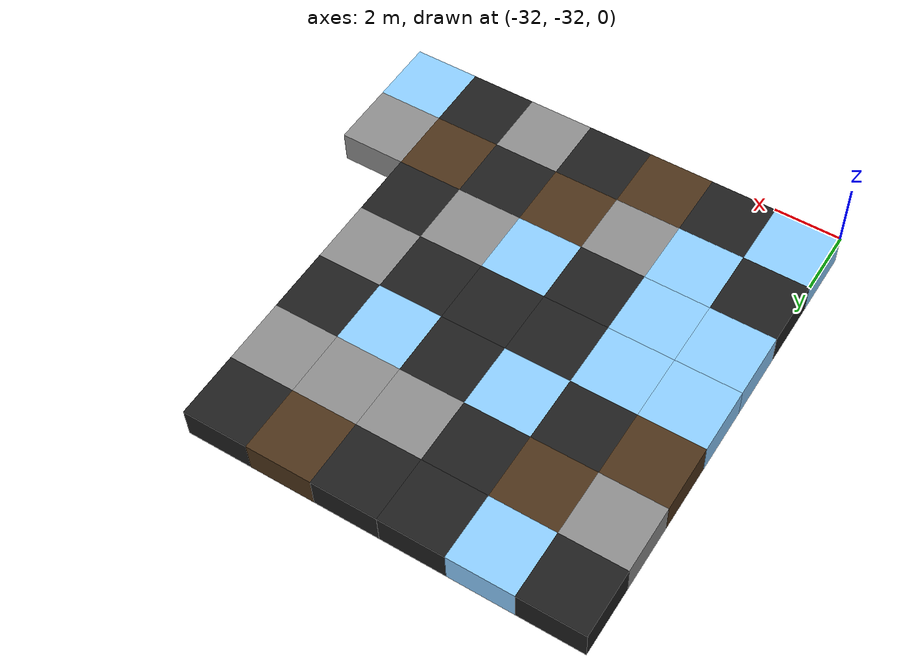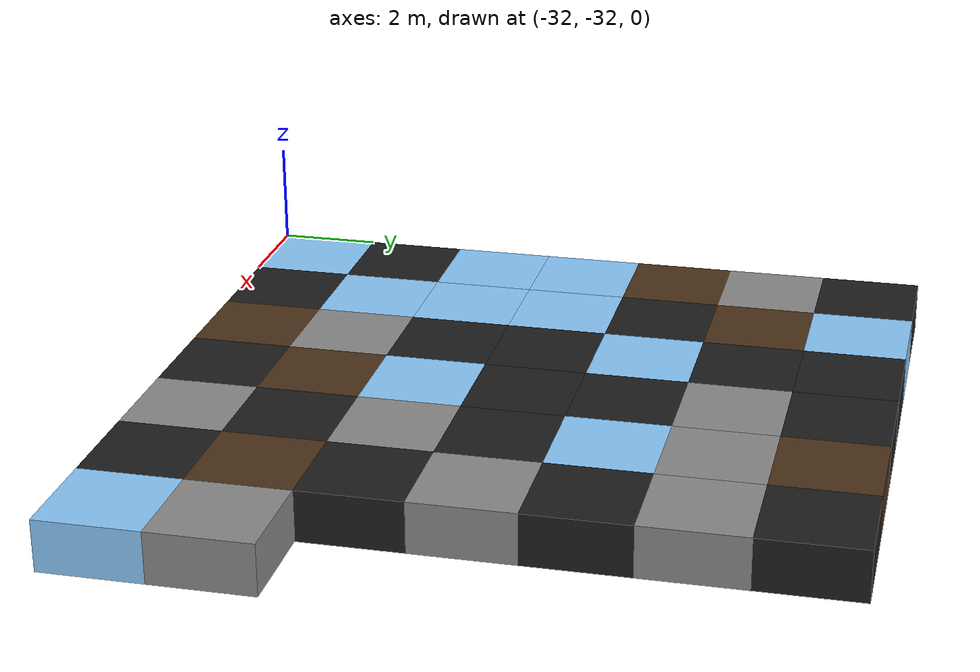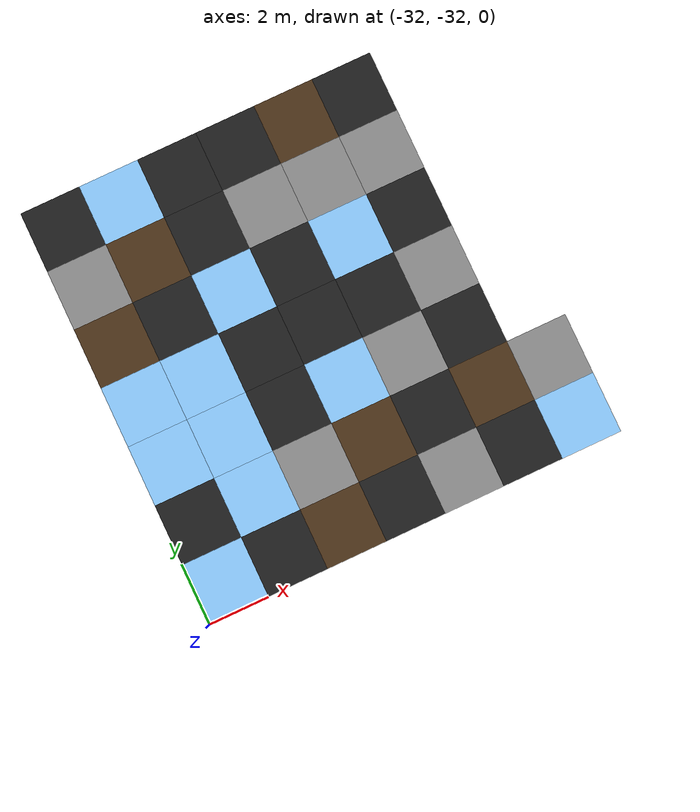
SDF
<sdf version="1.5">
 <world name="squares_example">
  <model name="tile_0_0">
   <static>true</static>
   <pose>-31.000 -31.000 -0.500 0 0 0</pose>
   <link name="link">
    <collision name="col">
     <geometry><box><size>2.0 2.0 1.0</size></box></geometry>
     <surface>
      <friction>
       <ode><mu>0.03</mu><mu2>0.02</mu2><fdir1>1 0 0</fdir1><slip1>0.03</slip1><slip2>0.03</slip2></ode>
       <torsional>
        <coefficient>0.005</coefficient>
        <use_patch_radius>false</use_patch_radius>
        <surface_radius>0.12</surface_radius>
        <ode><slip>0.01</slip></ode>
       </torsional>
      </friction>
      <bounce><restitution_coefficient>0.0</restitution_coefficient><threshold>0.1</threshold></bounce>
      <contact>
       <ode><kp>10000000.0</kp><kd>1000.0</kd><max_vel>0.01</max_vel><min_depth>0.0</min_depth></ode>
      </contact>
     </surface>
    </collision>
    <visual name="visual">
     <geometry><box><size>2.0 2.0 1.0</size></box></geometry>
     <material>
      <diffuse>0.55 0.80 1.00 1</diffuse>
      <ambient>0 0 0 0</ambient>
      <specular>0 0 0 1</specular>
      <emissive>0 0 0 1</emissive>
     </material>
    </visual>
   </link>
  </model>
  <model name="tile_1_0">
   <static>true</static>
   <pose>-29.000 -31.000 -0.500 0 0 0</pose>
   <link name="link">
    <collision name="col">
     <geometry><box><size>2.0 2.0 1.0</size></box></geometry>
     <surface>
      <friction>
       <ode><mu>0.4</mu><mu2>0.15</mu2><fdir1>1 0 0</fdir1><slip1>0.0</slip1><slip2>0.0</slip2></ode>
       <torsional>
        <coefficient>0.03</coefficient>
        <use_patch_radius>false</use_patch_radius>
        <surface_radius>0.12</surface_radius>
        <ode><slip>0.0</slip></ode>
       </torsional>
      </friction>
      <bounce><restitution_coefficient>0.0</restitution_coefficient><threshold>0.1</threshold></bounce>
      <contact>
       <ode><kp>1000000000.0</kp><kd>1000000.0</kd><max_vel>0.01</max_vel><min_depth>0.0</min_depth></ode>
      </contact>
     </surface>
    </collision>
    <visual name="visual">
     <geometry><box><size>2.0 2.0 1.0</size></box></geometry>
     <material>
      <diffuse>0.12 0.12 0.12 1</diffuse>
      <ambient>0 0 0 0</ambient>
      <specular>0 0 0 1</specular>
      <emissive>0 0 0 1</emissive>
     </material>
    </visual>
   </link>
  </model>
  <model name="tile_2_0">
   <static>true</static>
   <pose>-27.000 -31.000 -0.500 0 0 0</pose>
   <link name="link">
    <collision name="col">
     <geometry><box><size>2.0 2.0 1.0</size></box></geometry>
     <surface>
      <friction>
       <ode><mu>0.6</mu><mu2>0.4</mu2><fdir1>1 0 0</fdir1><slip1>0.08</slip1><slip2>0.08</slip2></ode>
       <torsional>
        <coefficient>0.03</coefficient>
        <use_patch_radius>false</use_patch_radius>
        <surface_radius>0.12</surface_radius>
        <ode><slip>0.0</slip></ode>
       </torsional>
      </friction>
      <bounce><restitution_coefficient>0.0</restitution_coefficient><threshold>0.1</threshold></bounce>
      <contact>
       <ode><kp>1000000.0</kp><kd>10000.0</kd><max_vel>0.01</max_vel><min_depth>0.0</min_depth></ode>
      </contact>
     </surface>
    </collision>
    <visual name="visual">
     <geometry><box><size>2.0 2.0 1.0</size></box></geometry>
     <material>
      <diffuse>0.30 0.20 0.10 1</diffuse>
      <ambient>0 0 0 0</ambient>
      <specular>0 0 0 1</specular>
      <emissive>0 0 0 1</emissive>
     </material>
    </visual>
   </link>
  </model>
  <model name="tile_3_0">
   <static>true</static>
   <pose>-25.000 -31.000 -0.500 0 0 0</pose>
   <link name="link">
    <collision name="col">
     <geometry><box><size>2.0 2.0 1.0</size></box></geometry>
     <surface>
      <friction>
       <ode><mu>0.4</mu><mu2>0.15</mu2><fdir1>1 0 0</fdir1><slip1>0.0</slip1><slip2>0.0</slip2></ode>
       <torsional>
        <coefficient>0.03</coefficient>
        <use_patch_radius>false</use_patch_radius>
        <surface_radius>0.12</surface_radius>
        <ode><slip>0.0</slip></ode>
       </torsional>
      </friction>
      <bounce><restitution_coefficient>0.0</restitution_coefficient><threshold>0.1</threshold></bounce>
      <contact>
       <ode><kp>1000000000.0</kp><kd>1000000.0</kd><max_vel>0.01</max_vel><min_depth>0.0</min_depth></ode>
      </contact>
     </surface>
    </collision>
    <visual name="visual">
     <geometry><box><size>2.0 2.0 1.0</size></box></geometry>
     <material>
      <diffuse>0.12 0.12 0.12 1</diffuse>
      <ambient>0 0 0 0</ambient>
      <specular>0 0 0 1</specular>
      <emissive>0 0 0 1</emissive>
     </material>
    </visual>
   </link>
  </model>
  <model name="tile_4_0">
   <static>true</static>
   <pose>-23.000 -31.000 -0.500 0 0 0</pose>
   <link name="link">
    <collision name="col">
     <geometry><box><size>2.0 2.0 1.0</size></box></geometry>
     <surface>
      <friction>
       <ode><mu>0.8</mu><mu2>0.3</mu2><fdir1>1 0 0</fdir1><slip1>0.0</slip1><slip2>0.0</slip2></ode>
       <torsional>
        <coefficient>0.03</coefficient>
        <use_patch_radius>false</use_patch_radius>
        <surface_radius>0.12</surface_radius>
        <ode><slip>0.0</slip></ode>
       </torsional>
      </friction>
      <bounce><restitution_coefficient>0.0</restitution_coefficient><threshold>0.1</threshold></bounce>
      <contact>
       <ode><kp>10000000000.0</kp><kd>10000000.0</kd><max_vel>0.01</max_vel><min_depth>0.0</min_depth></ode>
      </contact>
     </surface>
    </collision>
    <visual name="visual">
     <geometry><box><size>2.0 2.0 1.0</size></box></geometry>
     <material>
      <diffuse>0.55 0.55 0.55 1</diffuse>
      <ambient>0 0 0 0</ambient>
      <specular>0 0 0 1</specular>
      <emissive>0 0 0 1</emissive>
     </material>
    </visual>
   </link>
  </model>
  <model name="tile_5_0">
   <static>true</static>
   <pose>-21.000 -31.000 -0.500 0 0 0</pose>
   <link name="link">
    <collision name="col">
     <geometry><box><size>2.0 2.0 1.0</size></box></geometry>
     <surface>
      <friction>
       <ode><mu>0.4</mu><mu2>0.15</mu2><fdir1>1 0 0</fdir1><slip1>0.0</slip1><slip2>0.0</slip2></ode>
       <torsional>
        <coefficient>0.03</coefficient>
        <use_patch_radius>false</use_patch_radius>
        <surface_radius>0.12</surface_radius>
        <ode><slip>0.0</slip></ode>
       </torsional>
      </friction>
      <bounce><restitution_coefficient>0.0</restitution_coefficient><threshold>0.1</threshold></bounce>
      <contact>
       <ode><kp>1000000000.0</kp><kd>1000000.0</kd><max_vel>0.01</max_vel><min_depth>0.0</min_depth></ode>
      </contact>
     </surface>
    </collision>
    <visual name="visual">
     <geometry><box><size>2.0 2.0 1.0</size></box></geometry>
     <material>
      <diffuse>0.12 0.12 0.12 1</diffuse>
      <ambient>0 0 0 0</ambient>
      <specular>0 0 0 1</specular>
      <emissive>0 0 0 1</emissive>
     </material>
    </visual>
   </link>
  </model>
  <model name="tile_6_0">
   <static>true</static>
   <pose>-19.000 -31.000 -0.500 0 0 0</pose>
   <link name="link">
    <collision name="col">
     <geometry><box><size>2.0 2.0 1.0</size></box></geometry>
     <surface>
      <friction>
       <ode><mu>0.03</mu><mu2>0.02</mu2><fdir1>1 0 0</fdir1><slip1>0.03</slip1><slip2>0.03</slip2></ode>
       <torsional>
        <coefficient>0.005</coefficient>
        <use_patch_radius>false</use_patch_radius>
        <surface_radius>0.12</surface_radius>
        <ode><slip>0.01</slip></ode>
       </torsional>
      </friction>
      <bounce><restitution_coefficient>0.0</restitution_coefficient><threshold>0.1</threshold></bounce>
      <contact>
       <ode><kp>10000000.0</kp><kd>1000.0</kd><max_vel>0.01</max_vel><min_depth>0.0</min_depth></ode>
      </contact>
     </surface>
    </collision>
    <visual name="visual">
     <geometry><box><size>2.0 2.0 1.0</size></box></geometry>
     <material>
      <diffuse>0.55 0.80 1.00 1</diffuse>
      <ambient>0 0 0 0</ambient>
      <specular>0 0 0 1</specular>
      <emissive>0 0 0 1</emissive>
     </material>
    </visual>
   </link>
  </model>
  <model name="tile_0_1">
   <static>true</static>
   <pose>-31.000 -29.000 -0.500 0 0 0</pose>
   <link name="link">
    <collision name="col">
     <geometry><box><size>2.0 2.0 1.0</size></box></geometry>
     <surface>
      <friction>
       <ode><mu>0.4</mu><mu2>0.15</mu2><fdir1>1 0 0</fdir1><slip1>0.0</slip1><slip2>0.0</slip2></ode>
       <torsional>
        <coefficient>0.03</coefficient>
        <use_patch_radius>false</use_patch_radius>
        <surface_radius>0.12</surface_radius>
        <ode><slip>0.0</slip></ode>
       </torsional>
      </friction>
      <bounce><restitution_coefficient>0.0</restitution_coefficient><threshold>0.1</threshold></bounce>
      <contact>
       <ode><kp>1000000000.0</kp><kd>1000000.0</kd><max_vel>0.01</max_vel><min_depth>0.0</min_depth></ode>
      </contact>
     </surface>
    </collision>
    <visual name="visual">
     <geometry><box><size>2.0 2.0 1.0</size></box></geometry>
     <material>
      <diffuse>0.12 0.12 0.12 1</diffuse>
      <ambient>0 0 0 0</ambient>
      <specular>0 0 0 1</specular>
      <emissive>0 0 0 1</emissive>
     </material>
    </visual>
   </link>
  </model>
  <model name="tile_1_1">
   <static>true</static>
   <pose>-29.000 -29.000 -0.500 0 0 0</pose>
   <link name="link">
    <collision name="col">
     <geometry><box><size>2.0 2.0 1.0</size></box></geometry>
     <surface>
      <friction>
       <ode><mu>0.03</mu><mu2>0.02</mu2><fdir1>1 0 0</fdir1><slip1>0.03</slip1><slip2>0.03</slip2></ode>
       <torsional>
        <coefficient>0.005</coefficient>
        <use_patch_radius>false</use_patch_radius>
        <surface_radius>0.12</surface_radius>
        <ode><slip>0.01</slip></ode>
       </torsional>
      </friction>
      <bounce><restitution_coefficient>0.0</restitution_coefficient><threshold>0.1</threshold></bounce>
      <contact>
       <ode><kp>10000000.0</kp><kd>1000.0</kd><max_vel>0.01</max_vel><min_depth>0.0</min_depth></ode>
      </contact>
     </surface>
    </collision>
    <visual name="visual">
     <geometry><box><size>2.0 2.0 1.0</size></box></geometry>
     <material>
      <diffuse>0.55 0.80 1.00 1</diffuse>
      <ambient>0 0 0 0</ambient>
      <specular>0 0 0 1</specular>
      <emissive>0 0 0 1</emissive>
     </material>
    </visual>
   </link>
  </model>
  <model name="tile_2_1">
   <static>true</static>
   <pose>-27.000 -29.000 -0.500 0 0 0</pose>
   <link name="link">
    <collision name="col">
     <geometry><box><size>2.0 2.0 1.0</size></box></geometry>
     <surface>
      <friction>
       <ode><mu>0.8</mu><mu2>0.3</mu2><fdir1>1 0 0</fdir1><slip1>0.0</slip1><slip2>0.0</slip2></ode>
       <torsional>
        <coefficient>0.03</coefficient>
        <use_patch_radius>false</use_patch_radius>
        <surface_radius>0.12</surface_radius>
        <ode><slip>0.0</slip></ode>
       </torsional>
      </friction>
      <bounce><restitution_coefficient>0.0</restitution_coefficient><threshold>0.1</threshold></bounce>
      <contact>
       <ode><kp>10000000000.0</kp><kd>10000000.0</kd><max_vel>0.01</max_vel><min_depth>0.0</min_depth></ode>
      </contact>
     </surface>
    </collision>
    <visual name="visual">
     <geometry><box><size>2.0 2.0 1.0</size></box></geometry>
     <material>
      <diffuse>0.55 0.55 0.55 1</diffuse>
      <ambient>0 0 0 0</ambient>
      <specular>0 0 0 1</specular>
      <emissive>0 0 0 1</emissive>
     </material>
    </visual>
   </link>
  </model>
  <model name="tile_3_1">
   <static>true</static>
   <pose>-25.000 -29.000 -0.500 0 0 0</pose>
   <link name="link">
    <collision name="col">
     <geometry><box><size>2.0 2.0 1.0</size></box></geometry>
     <surface>
      <friction>
       <ode><mu>0.6</mu><mu2>0.4</mu2><fdir1>1 0 0</fdir1><slip1>0.08</slip1><slip2>0.08</slip2></ode>
       <torsional>
        <coefficient>0.03</coefficient>
        <use_patch_radius>false</use_patch_radius>
        <surface_radius>0.12</surface_radius>
        <ode><slip>0.0</slip></ode>
       </torsional>
      </friction>
      <bounce><restitution_coefficient>0.0</restitution_coefficient><threshold>0.1</threshold></bounce>
      <contact>
       <ode><kp>1000000.0</kp><kd>10000.0</kd><max_vel>0.01</max_vel><min_depth>0.0</min_depth></ode>
      </contact>
     </surface>
    </collision>
    <visual name="visual">
     <geometry><box><size>2.0 2.0 1.0</size></box></geometry>
     <material>
      <diffuse>0.30 0.20 0.10 1</diffuse>
      <ambient>0 0 0 0</ambient>
      <specular>0 0 0 1</specular>
      <emissive>0 0 0 1</emissive>
     </material>
    </visual>
   </link>
  </model>
  <model name="tile_4_1">
   <static>true</static>
   <pose>-23.000 -29.000 -0.500 0 0 0</pose>
   <link name="link">
    <collision name="col">
     <geometry><box><size>2.0 2.0 1.0</size></box></geometry>
     <surface>
      <friction>
       <ode><mu>0.4</mu><mu2>0.15</mu2><fdir1>1 0 0</fdir1><slip1>0.0</slip1><slip2>0.0</slip2></ode>
       <torsional>
        <coefficient>0.03</coefficient>
        <use_patch_radius>false</use_patch_radius>
        <surface_radius>0.12</surface_radius>
        <ode><slip>0.0</slip></ode>
       </torsional>
      </friction>
      <bounce><restitution_coefficient>0.0</restitution_coefficient><threshold>0.1</threshold></bounce>
      <contact>
       <ode><kp>1000000000.0</kp><kd>1000000.0</kd><max_vel>0.01</max_vel><min_depth>0.0</min_depth></ode>
      </contact>
     </surface>
    </collision>
    <visual name="visual">
     <geometry><box><size>2.0 2.0 1.0</size></box></geometry>
     <material>
      <diffuse>0.12 0.12 0.12 1</diffuse>
      <ambient>0 0 0 0</ambient>
      <specular>0 0 0 1</specular>
      <emissive>0 0 0 1</emissive>
     </material>
    </visual>
   </link>
  </model>
  <model name="tile_5_1">
   <static>true</static>
   <pose>-21.000 -29.000 -0.500 0 0 0</pose>
   <link name="link">
    <collision name="col">
     <geometry><box><size>2.0 2.0 1.0</size></box></geometry>
     <surface>
      <friction>
       <ode><mu>0.6</mu><mu2>0.4</mu2><fdir1>1 0 0</fdir1><slip1>0.08</slip1><slip2>0.08</slip2></ode>
       <torsional>
        <coefficient>0.03</coefficient>
        <use_patch_radius>false</use_patch_radius>
        <surface_radius>0.12</surface_radius>
        <ode><slip>0.0</slip></ode>
       </torsional>
      </friction>
      <bounce><restitution_coefficient>0.0</restitution_coefficient><threshold>0.1</threshold></bounce>
      <contact>
       <ode><kp>1000000.0</kp><kd>10000.0</kd><max_vel>0.01</max_vel><min_depth>0.0</min_depth></ode>
      </contact>
     </surface>
    </collision>
    <visual name="visual">
     <geometry><box><size>2.0 2.0 1.0</size></box></geometry>
     <material>
      <diffuse>0.30 0.20 0.10 1</diffuse>
      <ambient>0 0 0 0</ambient>
      <specular>0 0 0 1</specular>
      <emissive>0 0 0 1</emissive>
     </material>
    </visual>
   </link>
  </model>
  <model name="tile_6_1">
   <static>true</static>
   <pose>-19.000 -29.000 -0.500 0 0 0</pose>
   <link name="link">
    <collision name="col">
     <geometry><box><size>2.0 2.0 1.0</size></box></geometry>
     <surface>
      <friction>
       <ode><mu>0.8</mu><mu2>0.3</mu2><fdir1>1 0 0</fdir1><slip1>0.0</slip1><slip2>0.0</slip2></ode>
       <torsional>
        <coefficient>0.03</coefficient>
        <use_patch_radius>false</use_patch_radius>
        <surface_radius>0.12</surface_radius>
        <ode><slip>0.0</slip></ode>
       </torsional>
      </friction>
      <bounce><restitution_coefficient>0.0</restitution_coefficient><threshold>0.1</threshold></bounce>
      <contact>
       <ode><kp>10000000000.0</kp><kd>10000000.0</kd><max_vel>0.01</max_vel><min_depth>0.0</min_depth></ode>
      </contact>
     </surface>
    </collision>
    <visual name="visual">
     <geometry><box><size>2.0 2.0 1.0</size></box></geometry>
     <material>
      <diffuse>0.55 0.55 0.55 1</diffuse>
      <ambient>0 0 0 0</ambient>
      <specular>0 0 0 1</specular>
      <emissive>0 0 0 1</emissive>
     </material>
    </visual>
   </link>
  </model>
  <model name="tile_0_2">
   <static>true</static>
   <pose>-31.000 -27.000 -0.500 0 0 0</pose>
   <link name="link">
    <collision name="col">
     <geometry><box><size>2.0 2.0 1.0</size></box></geometry>
     <surface>
      <friction>
       <ode><mu>0.03</mu><mu2>0.02</mu2><fdir1>1 0 0</fdir1><slip1>0.03</slip1><slip2>0.03</slip2></ode>
       <torsional>
        <coefficient>0.005</coefficient>
        <use_patch_radius>false</use_patch_radius>
        <surface_radius>0.12</surface_radius>
        <ode><slip>0.01</slip></ode>
       </torsional>
      </friction>
      <bounce><restitution_coefficient>0.0</restitution_coefficient><threshold>0.1</threshold></bounce>
      <contact>
       <ode><kp>10000000.0</kp><kd>1000.0</kd><max_vel>0.01</max_vel><min_depth>0.0</min_depth></ode>
      </contact>
     </surface>
    </collision>
    <visual name="visual">
     <geometry><box><size>2.0 2.0 1.0</size></box></geometry>
     <material>
      <diffuse>0.55 0.80 1.00 1</diffuse>
      <ambient>0 0 0 0</ambient>
      <specular>0 0 0 1</specular>
      <emissive>0 0 0 1</emissive>
     </material>
    </visual>
   </link>
  </model>
  <model name="tile_1_2">
   <static>true</static>
   <pose>-29.000 -27.000 -0.500 0 0 0</pose>
   <link name="link">
    <collision name="col">
     <geometry><box><size>2.0 2.0 1.0</size></box></geometry>
     <surface>
      <friction>
       <ode><mu>0.03</mu><mu2>0.02</mu2><fdir1>1 0 0</fdir1><slip1>0.03</slip1><slip2>0.03</slip2></ode>
       <torsional>
        <coefficient>0.005</coefficient>
        <use_patch_radius>false</use_patch_radius>
        <surface_radius>0.12</surface_radius>
        <ode><slip>0.01</slip></ode>
       </torsional>
      </friction>
      <bounce><restitution_coefficient>0.0</restitution_coefficient><threshold>0.1</threshold></bounce>
      <contact>
       <ode><kp>10000000.0</kp><kd>1000.0</kd><max_vel>0.01</max_vel><min_depth>0.0</min_depth></ode>
      </contact>
     </surface>
    </collision>
    <visual name="visual">
     <geometry><box><size>2.0 2.0 1.0</size></box></geometry>
     <material>
      <diffuse>0.55 0.80 1.00 1</diffuse>
      <ambient>0 0 0 0</ambient>
      <specular>0 0 0 1</specular>
      <emissive>0 0 0 1</emissive>
     </material>
    </visual>
   </link>
  </model>
  <model name="tile_2_2">
   <static>true</static>
   <pose>-27.000 -27.000 -0.500 0 0 0</pose>
   <link name="link">
    <collision name="col">
     <geometry><box><size>2.0 2.0 1.0</size></box></geometry>
     <surface>
      <friction>
       <ode><mu>0.4</mu><mu2>0.15</mu2><fdir1>1 0 0</fdir1><slip1>0.0</slip1><slip2>0.0</slip2></ode>
       <torsional>
        <coefficient>0.03</coefficient>
        <use_patch_radius>false</use_patch_radius>
        <surface_radius>0.12</surface_radius>
        <ode><slip>0.0</slip></ode>
       </torsional>
      </friction>
      <bounce><restitution_coefficient>0.0</restitution_coefficient><threshold>0.1</threshold></bounce>
      <contact>
       <ode><kp>1000000000.0</kp><kd>1000000.0</kd><max_vel>0.01</max_vel><min_depth>0.0</min_depth></ode>
      </contact>
     </surface>
    </collision>
    <visual name="visual">
     <geometry><box><size>2.0 2.0 1.0</size></box></geometry>
     <material>
      <diffuse>0.12 0.12 0.12 1</diffuse>
      <ambient>0 0 0 0</ambient>
      <specular>0 0 0 1</specular>
      <emissive>0 0 0 1</emissive>
     </material>
    </visual>
   </link>
  </model>
  <model name="tile_3_2">
   <static>true</static>
   <pose>-25.000 -27.000 -0.500 0 0 0</pose>
   <link name="link">
    <collision name="col">
     <geometry><box><size>2.0 2.0 1.0</size></box></geometry>
     <surface>
      <friction>
       <ode><mu>0.03</mu><mu2>0.02</mu2><fdir1>1 0 0</fdir1><slip1>0.03</slip1><slip2>0.03</slip2></ode>
       <torsional>
        <coefficient>0.005</coefficient>
        <use_patch_radius>false</use_patch_radius>
        <surface_radius>0.12</surface_radius>
        <ode><slip>0.01</slip></ode>
       </torsional>
      </friction>
      <bounce><restitution_coefficient>0.0</restitution_coefficient><threshold>0.1</threshold></bounce>
      <contact>
       <ode><kp>10000000.0</kp><kd>1000.0</kd><max_vel>0.01</max_vel><min_depth>0.0</min_depth></ode>
      </contact>
     </surface>
    </collision>
    <visual name="visual">
     <geometry><box><size>2.0 2.0 1.0</size></box></geometry>
     <material>
      <diffuse>0.55 0.80 1.00 1</diffuse>
      <ambient>0 0 0 0</ambient>
      <specular>0 0 0 1</specular>
      <emissive>0 0 0 1</emissive>
     </material>
    </visual>
   </link>
  </model>
  <model name="tile_4_2">
   <static>true</static>
   <pose>-23.000 -27.000 -0.500 0 0 0</pose>
   <link name="link">
    <collision name="col">
     <geometry><box><size>2.0 2.0 1.0</size></box></geometry>
     <surface>
      <friction>
       <ode><mu>0.8</mu><mu2>0.3</mu2><fdir1>1 0 0</fdir1><slip1>0.0</slip1><slip2>0.0</slip2></ode>
       <torsional>
        <coefficient>0.03</coefficient>
        <use_patch_radius>false</use_patch_radius>
        <surface_radius>0.12</surface_radius>
        <ode><slip>0.0</slip></ode>
       </torsional>
      </friction>
      <bounce><restitution_coefficient>0.0</restitution_coefficient><threshold>0.1</threshold></bounce>
      <contact>
       <ode><kp>10000000000.0</kp><kd>10000000.0</kd><max_vel>0.01</max_vel><min_depth>0.0</min_depth></ode>
      </contact>
     </surface>
    </collision>
    <visual name="visual">
     <geometry><box><size>2.0 2.0 1.0</size></box></geometry>
     <material>
      <diffuse>0.55 0.55 0.55 1</diffuse>
      <ambient>0 0 0 0</ambient>
      <specular>0 0 0 1</specular>
      <emissive>0 0 0 1</emissive>
     </material>
    </visual>
   </link>
  </model>
  <model name="tile_5_2">
   <static>true</static>
   <pose>-21.000 -27.000 -0.500 0 0 0</pose>
   <link name="link">
    <collision name="col">
     <geometry><box><size>2.0 2.0 1.0</size></box></geometry>
     <surface>
      <friction>
       <ode><mu>0.4</mu><mu2>0.15</mu2><fdir1>1 0 0</fdir1><slip1>0.0</slip1><slip2>0.0</slip2></ode>
       <torsional>
        <coefficient>0.03</coefficient>
        <use_patch_radius>false</use_patch_radius>
        <surface_radius>0.12</surface_radius>
        <ode><slip>0.0</slip></ode>
       </torsional>
      </friction>
      <bounce><restitution_coefficient>0.0</restitution_coefficient><threshold>0.1</threshold></bounce>
      <contact>
       <ode><kp>1000000000.0</kp><kd>1000000.0</kd><max_vel>0.01</max_vel><min_depth>0.0</min_depth></ode>
      </contact>
     </surface>
    </collision>
    <visual name="visual">
     <geometry><box><size>2.0 2.0 1.0</size></box></geometry>
     <material>
      <diffuse>0.12 0.12 0.12 1</diffuse>
      <ambient>0 0 0 0</ambient>
      <specular>0 0 0 1</specular>
      <emissive>0 0 0 1</emissive>
     </material>
    </visual>
   </link>
  </model>
  <model name="tile_0_3">
   <static>true</static>
   <pose>-31.000 -25.000 -0.500 0 0 0</pose>
   <link name="link">
    <collision name="col">
     <geometry><box><size>2.0 2.0 1.0</size></box></geometry>
     <surface>
      <friction>
       <ode><mu>0.03</mu><mu2>0.02</mu2><fdir1>1 0 0</fdir1><slip1>0.03</slip1><slip2>0.03</slip2></ode>
       <torsional>
        <coefficient>0.005</coefficient>
        <use_patch_radius>false</use_patch_radius>
        <surface_radius>0.12</surface_radius>
        <ode><slip>0.01</slip></ode>
       </torsional>
      </friction>
      <bounce><restitution_coefficient>0.0</restitution_coefficient><threshold>0.1</threshold></bounce>
      <contact>
       <ode><kp>10000000.0</kp><kd>1000.0</kd><max_vel>0.01</max_vel><min_depth>0.0</min_depth></ode>
      </contact>
     </surface>
    </collision>
    <visual name="visual">
     <geometry><box><size>2.0 2.0 1.0</size></box></geometry>
     <material>
      <diffuse>0.55 0.80 1.00 1</diffuse>
      <ambient>0 0 0 0</ambient>
      <specular>0 0 0 1</specular>
      <emissive>0 0 0 1</emissive>
     </material>
    </visual>
   </link>
  </model>
  <model name="tile_1_3">
   <static>true</static>
   <pose>-29.000 -25.000 -0.500 0 0 0</pose>
   <link name="link">
    <collision name="col">
     <geometry><box><size>2.0 2.0 1.0</size></box></geometry>
     <surface>
      <friction>
       <ode><mu>0.03</mu><mu2>0.02</mu2><fdir1>1 0 0</fdir1><slip1>0.03</slip1><slip2>0.03</slip2></ode>
       <torsional>
        <coefficient>0.005</coefficient>
        <use_patch_radius>false</use_patch_radius>
        <surface_radius>0.12</surface_radius>
        <ode><slip>0.01</slip></ode>
       </torsional>
      </friction>
      <bounce><restitution_coefficient>0.0</restitution_coefficient><threshold>0.1</threshold></bounce>
      <contact>
       <ode><kp>10000000.0</kp><kd>1000.0</kd><max_vel>0.01</max_vel><min_depth>0.0</min_depth></ode>
      </contact>
     </surface>
    </collision>
    <visual name="visual">
     <geometry><box><size>2.0 2.0 1.0</size></box></geometry>
     <material>
      <diffuse>0.55 0.80 1.00 1</diffuse>
      <ambient>0 0 0 0</ambient>
      <specular>0 0 0 1</specular>
      <emissive>0 0 0 1</emissive>
     </material>
    </visual>
   </link>
  </model>
  <model name="tile_2_3">
   <static>true</static>
   <pose>-27.000 -25.000 -0.500 0 0 0</pose>
   <link name="link">
    <collision name="col">
     <geometry><box><size>2.0 2.0 1.0</size></box></geometry>
     <surface>
      <friction>
       <ode><mu>0.4</mu><mu2>0.15</mu2><fdir1>1 0 0</fdir1><slip1>0.0</slip1><slip2>0.0</slip2></ode>
       <torsional>
        <coefficient>0.03</coefficient>
        <use_patch_radius>false</use_patch_radius>
        <surface_radius>0.12</surface_radius>
        <ode><slip>0.0</slip></ode>
       </torsional>
      </friction>
      <bounce><restitution_coefficient>0.0</restitution_coefficient><threshold>0.1</threshold></bounce>
      <contact>
       <ode><kp>1000000000.0</kp><kd>1000000.0</kd><max_vel>0.01</max_vel><min_depth>0.0</min_depth></ode>
      </contact>
     </surface>
    </collision>
    <visual name="visual">
     <geometry><box><size>2.0 2.0 1.0</size></box></geometry>
     <material>
      <diffuse>0.12 0.12 0.12 1</diffuse>
      <ambient>0 0 0 0</ambient>
      <specular>0 0 0 1</specular>
      <emissive>0 0 0 1</emissive>
     </material>
    </visual>
   </link>
  </model>
  <model name="tile_3_3">
   <static>true</static>
   <pose>-25.000 -25.000 -0.500 0 0 0</pose>
   <link name="link">
    <collision name="col">
     <geometry><box><size>2.0 2.0 1.0</size></box></geometry>
     <surface>
      <friction>
       <ode><mu>0.4</mu><mu2>0.15</mu2><fdir1>1 0 0</fdir1><slip1>0.0</slip1><slip2>0.0</slip2></ode>
       <torsional>
        <coefficient>0.03</coefficient>
        <use_patch_radius>false</use_patch_radius>
        <surface_radius>0.12</surface_radius>
        <ode><slip>0.0</slip></ode>
       </torsional>
      </friction>
      <bounce><restitution_coefficient>0.0</restitution_coefficient><threshold>0.1</threshold></bounce>
      <contact>
       <ode><kp>1000000000.0</kp><kd>1000000.0</kd><max_vel>0.01</max_vel><min_depth>0.0</min_depth></ode>
      </contact>
     </surface>
    </collision>
    <visual name="visual">
     <geometry><box><size>2.0 2.0 1.0</size></box></geometry>
     <material>
      <diffuse>0.12 0.12 0.12 1</diffuse>
      <ambient>0 0 0 0</ambient>
      <specular>0 0 0 1</specular>
      <emissive>0 0 0 1</emissive>
     </material>
    </visual>
   </link>
  </model>
  <model name="tile_4_3">
   <static>true</static>
   <pose>-23.000 -25.000 -0.500 0 0 0</pose>
   <link name="link">
    <collision name="col">
     <geometry><box><size>2.0 2.0 1.0</size></box></geometry>
     <surface>
      <friction>
       <ode><mu>0.4</mu><mu2>0.15</mu2><fdir1>1 0 0</fdir1><slip1>0.0</slip1><slip2>0.0</slip2></ode>
       <torsional>
        <coefficient>0.03</coefficient>
        <use_patch_radius>false</use_patch_radius>
        <surface_radius>0.12</surface_radius>
        <ode><slip>0.0</slip></ode>
       </torsional>
      </friction>
      <bounce><restitution_coefficient>0.0</restitution_coefficient><threshold>0.1</threshold></bounce>
      <contact>
       <ode><kp>1000000000.0</kp><kd>1000000.0</kd><max_vel>0.01</max_vel><min_depth>0.0</min_depth></ode>
      </contact>
     </surface>
    </collision>
    <visual name="visual">
     <geometry><box><size>2.0 2.0 1.0</size></box></geometry>
     <material>
      <diffuse>0.12 0.12 0.12 1</diffuse>
      <ambient>0 0 0 0</ambient>
      <specular>0 0 0 1</specular>
      <emissive>0 0 0 1</emissive>
     </material>
    </visual>
   </link>
  </model>
  <model name="tile_5_3">
   <static>true</static>
   <pose>-21.000 -25.000 -0.500 0 0 0</pose>
   <link name="link">
    <collision name="col">
     <geometry><box><size>2.0 2.0 1.0</size></box></geometry>
     <surface>
      <friction>
       <ode><mu>0.8</mu><mu2>0.3</mu2><fdir1>1 0 0</fdir1><slip1>0.0</slip1><slip2>0.0</slip2></ode>
       <torsional>
        <coefficient>0.03</coefficient>
        <use_patch_radius>false</use_patch_radius>
        <surface_radius>0.12</surface_radius>
        <ode><slip>0.0</slip></ode>
       </torsional>
      </friction>
      <bounce><restitution_coefficient>0.0</restitution_coefficient><threshold>0.1</threshold></bounce>
      <contact>
       <ode><kp>10000000000.0</kp><kd>10000000.0</kd><max_vel>0.01</max_vel><min_depth>0.0</min_depth></ode>
      </contact>
     </surface>
    </collision>
    <visual name="visual">
     <geometry><box><size>2.0 2.0 1.0</size></box></geometry>
     <material>
      <diffuse>0.55 0.55 0.55 1</diffuse>
      <ambient>0 0 0 0</ambient>
      <specular>0 0 0 1</specular>
      <emissive>0 0 0 1</emissive>
     </material>
    </visual>
   </link>
  </model>
  <model name="tile_0_4">
   <static>true</static>
   <pose>-31.000 -23.000 -0.500 0 0 0</pose>
   <link name="link">
    <collision name="col">
     <geometry><box><size>2.0 2.0 1.0</size></box></geometry>
     <surface>
      <friction>
       <ode><mu>0.6</mu><mu2>0.4</mu2><fdir1>1 0 0</fdir1><slip1>0.08</slip1><slip2>0.08</slip2></ode>
       <torsional>
        <coefficient>0.03</coefficient>
        <use_patch_radius>false</use_patch_radius>
        <surface_radius>0.12</surface_radius>
        <ode><slip>0.0</slip></ode>
       </torsional>
      </friction>
      <bounce><restitution_coefficient>0.0</restitution_coefficient><threshold>0.1</threshold></bounce>
      <contact>
       <ode><kp>1000000.0</kp><kd>10000.0</kd><max_vel>0.01</max_vel><min_depth>0.0</min_depth></ode>
      </contact>
     </surface>
    </collision>
    <visual name="visual">
     <geometry><box><size>2.0 2.0 1.0</size></box></geometry>
     <material>
      <diffuse>0.30 0.20 0.10 1</diffuse>
      <ambient>0 0 0 0</ambient>
      <specular>0 0 0 1</specular>
      <emissive>0 0 0 1</emissive>
     </material>
    </visual>
   </link>
  </model>
  <model name="tile_1_4">
   <static>true</static>
   <pose>-29.000 -23.000 -0.500 0 0 0</pose>
   <link name="link">
    <collision name="col">
     <geometry><box><size>2.0 2.0 1.0</size></box></geometry>
     <surface>
      <friction>
       <ode><mu>0.4</mu><mu2>0.15</mu2><fdir1>1 0 0</fdir1><slip1>0.0</slip1><slip2>0.0</slip2></ode>
       <torsional>
        <coefficient>0.03</coefficient>
        <use_patch_radius>false</use_patch_radius>
        <surface_radius>0.12</surface_radius>
        <ode><slip>0.0</slip></ode>
       </torsional>
      </friction>
      <bounce><restitution_coefficient>0.0</restitution_coefficient><threshold>0.1</threshold></bounce>
      <contact>
       <ode><kp>1000000000.0</kp><kd>1000000.0</kd><max_vel>0.01</max_vel><min_depth>0.0</min_depth></ode>
      </contact>
     </surface>
    </collision>
    <visual name="visual">
     <geometry><box><size>2.0 2.0 1.0</size></box></geometry>
     <material>
      <diffuse>0.12 0.12 0.12 1</diffuse>
      <ambient>0 0 0 0</ambient>
      <specular>0 0 0 1</specular>
      <emissive>0 0 0 1</emissive>
     </material>
    </visual>
   </link>
  </model>
  <model name="tile_2_4">
   <static>true</static>
   <pose>-27.000 -23.000 -0.500 0 0 0</pose>
   <link name="link">
    <collision name="col">
     <geometry><box><size>2.0 2.0 1.0</size></box></geometry>
     <surface>
      <friction>
       <ode><mu>0.03</mu><mu2>0.02</mu2><fdir1>1 0 0</fdir1><slip1>0.03</slip1><slip2>0.03</slip2></ode>
       <torsional>
        <coefficient>0.005</coefficient>
        <use_patch_radius>false</use_patch_radius>
        <surface_radius>0.12</surface_radius>
        <ode><slip>0.01</slip></ode>
       </torsional>
      </friction>
      <bounce><restitution_coefficient>0.0</restitution_coefficient><threshold>0.1</threshold></bounce>
      <contact>
       <ode><kp>10000000.0</kp><kd>1000.0</kd><max_vel>0.01</max_vel><min_depth>0.0</min_depth></ode>
      </contact>
     </surface>
    </collision>
    <visual name="visual">
     <geometry><box><size>2.0 2.0 1.0</size></box></geometry>
     <material>
      <diffuse>0.55 0.80 1.00 1</diffuse>
      <ambient>0 0 0 0</ambient>
      <specular>0 0 0 1</specular>
      <emissive>0 0 0 1</emissive>
     </material>
    </visual>
   </link>
  </model>
  <model name="tile_3_4">
   <static>true</static>
   <pose>-25.000 -23.000 -0.500 0 0 0</pose>
   <link name="link">
    <collision name="col">
     <geometry><box><size>2.0 2.0 1.0</size></box></geometry>
     <surface>
      <friction>
       <ode><mu>0.4</mu><mu2>0.15</mu2><fdir1>1 0 0</fdir1><slip1>0.0</slip1><slip2>0.0</slip2></ode>
       <torsional>
        <coefficient>0.03</coefficient>
        <use_patch_radius>false</use_patch_radius>
        <surface_radius>0.12</surface_radius>
        <ode><slip>0.0</slip></ode>
       </torsional>
      </friction>
      <bounce><restitution_coefficient>0.0</restitution_coefficient><threshold>0.1</threshold></bounce>
      <contact>
       <ode><kp>1000000000.0</kp><kd>1000000.0</kd><max_vel>0.01</max_vel><min_depth>0.0</min_depth></ode>
      </contact>
     </surface>
    </collision>
    <visual name="visual">
     <geometry><box><size>2.0 2.0 1.0</size></box></geometry>
     <material>
      <diffuse>0.12 0.12 0.12 1</diffuse>
      <ambient>0 0 0 0</ambient>
      <specular>0 0 0 1</specular>
      <emissive>0 0 0 1</emissive>
     </material>
    </visual>
   </link>
  </model>
  <model name="tile_4_4">
   <static>true</static>
   <pose>-23.000 -23.000 -0.500 0 0 0</pose>
   <link name="link">
    <collision name="col">
     <geometry><box><size>2.0 2.0 1.0</size></box></geometry>
     <surface>
      <friction>
       <ode><mu>0.03</mu><mu2>0.02</mu2><fdir1>1 0 0</fdir1><slip1>0.03</slip1><slip2>0.03</slip2></ode>
       <torsional>
        <coefficient>0.005</coefficient>
        <use_patch_radius>false</use_patch_radius>
        <surface_radius>0.12</surface_radius>
        <ode><slip>0.01</slip></ode>
       </torsional>
      </friction>
      <bounce><restitution_coefficient>0.0</restitution_coefficient><threshold>0.1</threshold></bounce>
      <contact>
       <ode><kp>10000000.0</kp><kd>1000.0</kd><max_vel>0.01</max_vel><min_depth>0.0</min_depth></ode>
      </contact>
     </surface>
    </collision>
    <visual name="visual">
     <geometry><box><size>2.0 2.0 1.0</size></box></geometry>
     <material>
      <diffuse>0.55 0.80 1.00 1</diffuse>
      <ambient>0 0 0 0</ambient>
      <specular>0 0 0 1</specular>
      <emissive>0 0 0 1</emissive>
     </material>
    </visual>
   </link>
  </model>
  <model name="tile_5_4">
   <static>true</static>
   <pose>-21.000 -23.000 -0.500 0 0 0</pose>
   <link name="link">
    <collision name="col">
     <geometry><box><size>2.0 2.0 1.0</size></box></geometry>
     <surface>
      <friction>
       <ode><mu>0.4</mu><mu2>0.15</mu2><fdir1>1 0 0</fdir1><slip1>0.0</slip1><slip2>0.0</slip2></ode>
       <torsional>
        <coefficient>0.03</coefficient>
        <use_patch_radius>false</use_patch_radius>
        <surface_radius>0.12</surface_radius>
        <ode><slip>0.0</slip></ode>
       </torsional>
      </friction>
      <bounce><restitution_coefficient>0.0</restitution_coefficient><threshold>0.1</threshold></bounce>
      <contact>
       <ode><kp>1000000000.0</kp><kd>1000000.0</kd><max_vel>0.01</max_vel><min_depth>0.0</min_depth></ode>
      </contact>
     </surface>
    </collision>
    <visual name="visual">
     <geometry><box><size>2.0 2.0 1.0</size></box></geometry>
     <material>
      <diffuse>0.12 0.12 0.12 1</diffuse>
      <ambient>0 0 0 0</ambient>
      <specular>0 0 0 1</specular>
      <emissive>0 0 0 1</emissive>
     </material>
    </visual>
   </link>
  </model>
  <model name="tile_0_5">
   <static>true</static>
   <pose>-31.000 -21.000 -0.500 0 0 0</pose>
   <link name="link">
    <collision name="col">
     <geometry><box><size>2.0 2.0 1.0</size></box></geometry>
     <surface>
      <friction>
       <ode><mu>0.8</mu><mu2>0.3</mu2><fdir1>1 0 0</fdir1><slip1>0.0</slip1><slip2>0.0</slip2></ode>
       <torsional>
        <coefficient>0.03</coefficient>
        <use_patch_radius>false</use_patch_radius>
        <surface_radius>0.12</surface_radius>
        <ode><slip>0.0</slip></ode>
       </torsional>
      </friction>
      <bounce><restitution_coefficient>0.0</restitution_coefficient><threshold>0.1</threshold></bounce>
      <contact>
       <ode><kp>10000000000.0</kp><kd>10000000.0</kd><max_vel>0.01</max_vel><min_depth>0.0</min_depth></ode>
      </contact>
     </surface>
    </collision>
    <visual name="visual">
     <geometry><box><size>2.0 2.0 1.0</size></box></geometry>
     <material>
      <diffuse>0.55 0.55 0.55 1</diffuse>
      <ambient>0 0 0 0</ambient>
      <specular>0 0 0 1</specular>
      <emissive>0 0 0 1</emissive>
     </material>
    </visual>
   </link>
  </model>
  <model name="tile_1_5">
   <static>true</static>
   <pose>-29.000 -21.000 -0.500 0 0 0</pose>
   <link name="link">
    <collision name="col">
     <geometry><box><size>2.0 2.0 1.0</size></box></geometry>
     <surface>
      <friction>
       <ode><mu>0.6</mu><mu2>0.4</mu2><fdir1>1 0 0</fdir1><slip1>0.08</slip1><slip2>0.08</slip2></ode>
       <torsional>
        <coefficient>0.03</coefficient>
        <use_patch_radius>false</use_patch_radius>
        <surface_radius>0.12</surface_radius>
        <ode><slip>0.0</slip></ode>
       </torsional>
      </friction>
      <bounce><restitution_coefficient>0.0</restitution_coefficient><threshold>0.1</threshold></bounce>
      <contact>
       <ode><kp>1000000.0</kp><kd>10000.0</kd><max_vel>0.01</max_vel><min_depth>0.0</min_depth></ode>
      </contact>
     </surface>
    </collision>
    <visual name="visual">
     <geometry><box><size>2.0 2.0 1.0</size></box></geometry>
     <material>
      <diffuse>0.30 0.20 0.10 1</diffuse>
      <ambient>0 0 0 0</ambient>
      <specular>0 0 0 1</specular>
      <emissive>0 0 0 1</emissive>
     </material>
    </visual>
   </link>
  </model>
  <model name="tile_2_5">
   <static>true</static>
   <pose>-27.000 -21.000 -0.500 0 0 0</pose>
   <link name="link">
    <collision name="col">
     <geometry><box><size>2.0 2.0 1.0</size></box></geometry>
     <surface>
      <friction>
       <ode><mu>0.4</mu><mu2>0.15</mu2><fdir1>1 0 0</fdir1><slip1>0.0</slip1><slip2>0.0</slip2></ode>
       <torsional>
        <coefficient>0.03</coefficient>
        <use_patch_radius>false</use_patch_radius>
        <surface_radius>0.12</surface_radius>
        <ode><slip>0.0</slip></ode>
       </torsional>
      </friction>
      <bounce><restitution_coefficient>0.0</restitution_coefficient><threshold>0.1</threshold></bounce>
      <contact>
       <ode><kp>1000000000.0</kp><kd>1000000.0</kd><max_vel>0.01</max_vel><min_depth>0.0</min_depth></ode>
      </contact>
     </surface>
    </collision>
    <visual name="visual">
     <geometry><box><size>2.0 2.0 1.0</size></box></geometry>
     <material>
      <diffuse>0.12 0.12 0.12 1</diffuse>
      <ambient>0 0 0 0</ambient>
      <specular>0 0 0 1</specular>
      <emissive>0 0 0 1</emissive>
     </material>
    </visual>
   </link>
  </model>
  <model name="tile_3_5">
   <static>true</static>
   <pose>-25.000 -21.000 -0.500 0 0 0</pose>
   <link name="link">
    <collision name="col">
     <geometry><box><size>2.0 2.0 1.0</size></box></geometry>
     <surface>
      <friction>
       <ode><mu>0.8</mu><mu2>0.3</mu2><fdir1>1 0 0</fdir1><slip1>0.0</slip1><slip2>0.0</slip2></ode>
       <torsional>
        <coefficient>0.03</coefficient>
        <use_patch_radius>false</use_patch_radius>
        <surface_radius>0.12</surface_radius>
        <ode><slip>0.0</slip></ode>
       </torsional>
      </friction>
      <bounce><restitution_coefficient>0.0</restitution_coefficient><threshold>0.1</threshold></bounce>
      <contact>
       <ode><kp>10000000000.0</kp><kd>10000000.0</kd><max_vel>0.01</max_vel><min_depth>0.0</min_depth></ode>
      </contact>
     </surface>
    </collision>
    <visual name="visual">
     <geometry><box><size>2.0 2.0 1.0</size></box></geometry>
     <material>
      <diffuse>0.55 0.55 0.55 1</diffuse>
      <ambient>0 0 0 0</ambient>
      <specular>0 0 0 1</specular>
      <emissive>0 0 0 1</emissive>
     </material>
    </visual>
   </link>
  </model>
  <model name="tile_4_5">
   <static>true</static>
   <pose>-23.000 -21.000 -0.500 0 0 0</pose>
   <link name="link">
    <collision name="col">
     <geometry><box><size>2.0 2.0 1.0</size></box></geometry>
     <surface>
      <friction>
       <ode><mu>0.8</mu><mu2>0.3</mu2><fdir1>1 0 0</fdir1><slip1>0.0</slip1><slip2>0.0</slip2></ode>
       <torsional>
        <coefficient>0.03</coefficient>
        <use_patch_radius>false</use_patch_radius>
        <surface_radius>0.12</surface_radius>
        <ode><slip>0.0</slip></ode>
       </torsional>
      </friction>
      <bounce><restitution_coefficient>0.0</restitution_coefficient><threshold>0.1</threshold></bounce>
      <contact>
       <ode><kp>10000000000.0</kp><kd>10000000.0</kd><max_vel>0.01</max_vel><min_depth>0.0</min_depth></ode>
      </contact>
     </surface>
    </collision>
    <visual name="visual">
     <geometry><box><size>2.0 2.0 1.0</size></box></geometry>
     <material>
      <diffuse>0.55 0.55 0.55 1</diffuse>
      <ambient>0 0 0 0</ambient>
      <specular>0 0 0 1</specular>
      <emissive>0 0 0 1</emissive>
     </material>
    </visual>
   </link>
  </model>
  <model name="tile_5_5">
   <static>true</static>
   <pose>-21.000 -21.000 -0.500 0 0 0</pose>
   <link name="link">
    <collision name="col">
     <geometry><box><size>2.0 2.0 1.0</size></box></geometry>
     <surface>
      <friction>
       <ode><mu>0.8</mu><mu2>0.3</mu2><fdir1>1 0 0</fdir1><slip1>0.0</slip1><slip2>0.0</slip2></ode>
       <torsional>
        <coefficient>0.03</coefficient>
        <use_patch_radius>false</use_patch_radius>
        <surface_radius>0.12</surface_radius>
        <ode><slip>0.0</slip></ode>
       </torsional>
      </friction>
      <bounce><restitution_coefficient>0.0</restitution_coefficient><threshold>0.1</threshold></bounce>
      <contact>
       <ode><kp>10000000000.0</kp><kd>10000000.0</kd><max_vel>0.01</max_vel><min_depth>0.0</min_depth></ode>
      </contact>
     </surface>
    </collision>
    <visual name="visual">
     <geometry><box><size>2.0 2.0 1.0</size></box></geometry>
     <material>
      <diffuse>0.55 0.55 0.55 1</diffuse>
      <ambient>0 0 0 0</ambient>
      <specular>0 0 0 1</specular>
      <emissive>0 0 0 1</emissive>
     </material>
    </visual>
   </link>
  </model>
  <model name="tile_0_6">
   <static>true</static>
   <pose>-31.000 -19.000 -0.500 0 0 0</pose>
   <link name="link">
    <collision name="col">
     <geometry><box><size>2.0 2.0 1.0</size></box></geometry>
     <surface>
      <friction>
       <ode><mu>0.4</mu><mu2>0.15</mu2><fdir1>1 0 0</fdir1><slip1>0.0</slip1><slip2>0.0</slip2></ode>
       <torsional>
        <coefficient>0.03</coefficient>
        <use_patch_radius>false</use_patch_radius>
        <surface_radius>0.12</surface_radius>
        <ode><slip>0.0</slip></ode>
       </torsional>
      </friction>
      <bounce><restitution_coefficient>0.0</restitution_coefficient><threshold>0.1</threshold></bounce>
      <contact>
       <ode><kp>1000000000.0</kp><kd>1000000.0</kd><max_vel>0.01</max_vel><min_depth>0.0</min_depth></ode>
      </contact>
     </surface>
    </collision>
    <visual name="visual">
     <geometry><box><size>2.0 2.0 1.0</size></box></geometry>
     <material>
      <diffuse>0.12 0.12 0.12 1</diffuse>
      <ambient>0 0 0 0</ambient>
      <specular>0 0 0 1</specular>
      <emissive>0 0 0 1</emissive>
     </material>
    </visual>
   </link>
  </model>
  <model name="tile_1_6">
   <static>true</static>
   <pose>-29.000 -19.000 -0.500 0 0 0</pose>
   <link name="link">
    <collision name="col">
     <geometry><box><size>2.0 2.0 1.0</size></box></geometry>
     <surface>
      <friction>
       <ode><mu>0.03</mu><mu2>0.02</mu2><fdir1>1 0 0</fdir1><slip1>0.03</slip1><slip2>0.03</slip2></ode>
       <torsional>
        <coefficient>0.005</coefficient>
        <use_patch_radius>false</use_patch_radius>
        <surface_radius>0.12</surface_radius>
        <ode><slip>0.01</slip></ode>
       </torsional>
      </friction>
      <bounce><restitution_coefficient>0.0</restitution_coefficient><threshold>0.1</threshold></bounce>
      <contact>
       <ode><kp>10000000.0</kp><kd>1000.0</kd><max_vel>0.01</max_vel><min_depth>0.0</min_depth></ode>
      </contact>
     </surface>
    </collision>
    <visual name="visual">
     <geometry><box><size>2.0 2.0 1.0</size></box></geometry>
     <material>
      <diffuse>0.55 0.80 1.00 1</diffuse>
      <ambient>0 0 0 0</ambient>
      <specular>0 0 0 1</specular>
      <emissive>0 0 0 1</emissive>
     </material>
    </visual>
   </link>
  </model>
  <model name="tile_2_6">
   <static>true</static>
   <pose>-27.000 -19.000 -0.500 0 0 0</pose>
   <link name="link">
    <collision name="col">
     <geometry><box><size>2.0 2.0 1.0</size></box></geometry>
     <surface>
      <friction>
       <ode><mu>0.4</mu><mu2>0.15</mu2><fdir1>1 0 0</fdir1><slip1>0.0</slip1><slip2>0.0</slip2></ode>
       <torsional>
        <coefficient>0.03</coefficient>
        <use_patch_radius>false</use_patch_radius>
        <surface_radius>0.12</surface_radius>
        <ode><slip>0.0</slip></ode>
       </torsional>
      </friction>
      <bounce><restitution_coefficient>0.0</restitution_coefficient><threshold>0.1</threshold></bounce>
      <contact>
       <ode><kp>1000000000.0</kp><kd>1000000.0</kd><max_vel>0.01</max_vel><min_depth>0.0</min_depth></ode>
      </contact>
     </surface>
    </collision>
    <visual name="visual">
     <geometry><box><size>2.0 2.0 1.0</size></box></geometry>
     <material>
      <diffuse>0.12 0.12 0.12 1</diffuse>
      <ambient>0 0 0 0</ambient>
      <specular>0 0 0 1</specular>
      <emissive>0 0 0 1</emissive>
     </material>
    </visual>
   </link>
  </model>
  <model name="tile_3_6">
   <static>true</static>
   <pose>-25.000 -19.000 -0.500 0 0 0</pose>
   <link name="link">
    <collision name="col">
     <geometry><box><size>2.0 2.0 1.0</size></box></geometry>
     <surface>
      <friction>
       <ode><mu>0.4</mu><mu2>0.15</mu2><fdir1>1 0 0</fdir1><slip1>0.0</slip1><slip2>0.0</slip2></ode>
       <torsional>
        <coefficient>0.03</coefficient>
        <use_patch_radius>false</use_patch_radius>
        <surface_radius>0.12</surface_radius>
        <ode><slip>0.0</slip></ode>
       </torsional>
      </friction>
      <bounce><restitution_coefficient>0.0</restitution_coefficient><threshold>0.1</threshold></bounce>
      <contact>
       <ode><kp>1000000000.0</kp><kd>1000000.0</kd><max_vel>0.01</max_vel><min_depth>0.0</min_depth></ode>
      </contact>
     </surface>
    </collision>
    <visual name="visual">
     <geometry><box><size>2.0 2.0 1.0</size></box></geometry>
     <material>
      <diffuse>0.12 0.12 0.12 1</diffuse>
      <ambient>0 0 0 0</ambient>
      <specular>0 0 0 1</specular>
      <emissive>0 0 0 1</emissive>
     </material>
    </visual>
   </link>
  </model>
  <model name="tile_4_6">
   <static>true</static>
   <pose>-23.000 -19.000 -0.500 0 0 0</pose>
   <link name="link">
    <collision name="col">
     <geometry><box><size>2.0 2.0 1.0</size></box></geometry>
     <surface>
      <friction>
       <ode><mu>0.6</mu><mu2>0.4</mu2><fdir1>1 0 0</fdir1><slip1>0.08</slip1><slip2>0.08</slip2></ode>
       <torsional>
        <coefficient>0.03</coefficient>
        <use_patch_radius>false</use_patch_radius>
        <surface_radius>0.12</surface_radius>
        <ode><slip>0.0</slip></ode>
       </torsional>
      </friction>
      <bounce><restitution_coefficient>0.0</restitution_coefficient><threshold>0.1</threshold></bounce>
      <contact>
       <ode><kp>1000000.0</kp><kd>10000.0</kd><max_vel>0.01</max_vel><min_depth>0.0</min_depth></ode>
      </contact>
     </surface>
    </collision>
    <visual name="visual">
     <geometry><box><size>2.0 2.0 1.0</size></box></geometry>
     <material>
      <diffuse>0.30 0.20 0.10 1</diffuse>
      <ambient>0 0 0 0</ambient>
      <specular>0 0 0 1</specular>
      <emissive>0 0 0 1</emissive>
     </material>
    </visual>
   </link>
  </model>
  <model name="tile_5_6">
   <static>true</static>
   <pose>-21.000 -19.000 -0.500 0 0 0</pose>
   <link name="link">
    <collision name="col">
     <geometry><box><size>2.0 2.0 1.0</size></box></geometry>
     <surface>
      <friction>
       <ode><mu>0.4</mu><mu2>0.15</mu2><fdir1>1 0 0</fdir1><slip1>0.0</slip1><slip2>0.0</slip2></ode>
       <torsional>
        <coefficient>0.03</coefficient>
        <use_patch_radius>false</use_patch_radius>
        <surface_radius>0.12</surface_radius>
        <ode><slip>0.0</slip></ode>
       </torsional>
      </friction>
      <bounce><restitution_coefficient>0.0</restitution_coefficient><threshold>0.1</threshold></bounce>
      <contact>
       <ode><kp>1000000000.0</kp><kd>1000000.0</kd><max_vel>0.01</max_vel><min_depth>0.0</min_depth></ode>
      </contact>
     </surface>
    </collision>
    <visual name="visual">
     <geometry><box><size>2.0 2.0 1.0</size></box></geometry>
     <material>
      <diffuse>0.12 0.12 0.12 1</diffuse>
      <ambient>0 0 0 0</ambient>
      <specular>0 0 0 1</specular>
      <emissive>0 0 0 1</emissive>
     </material>
    </visual>
   </link>
  </model>
 </world>
</sdf>
